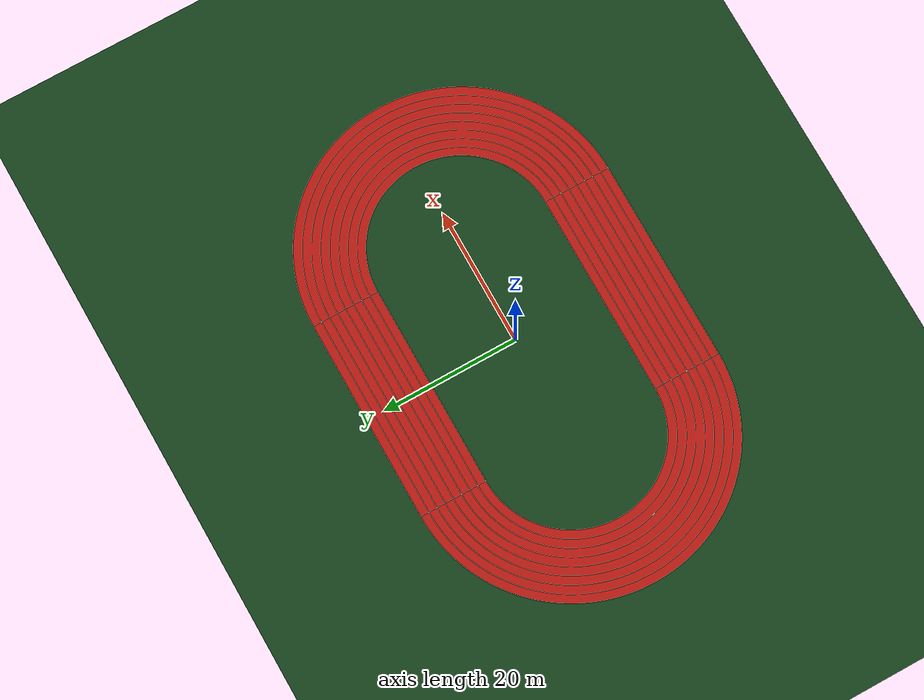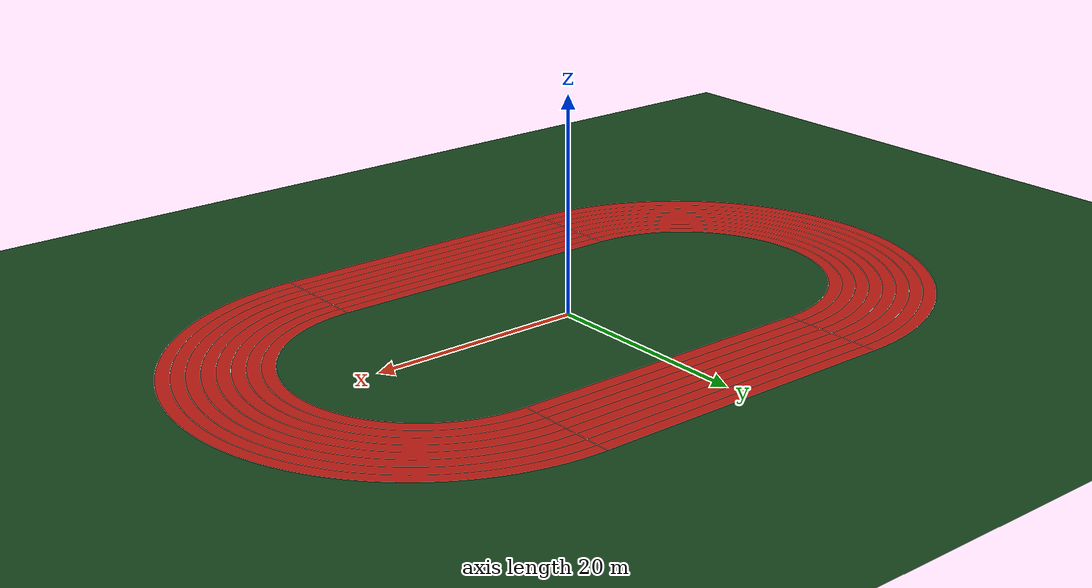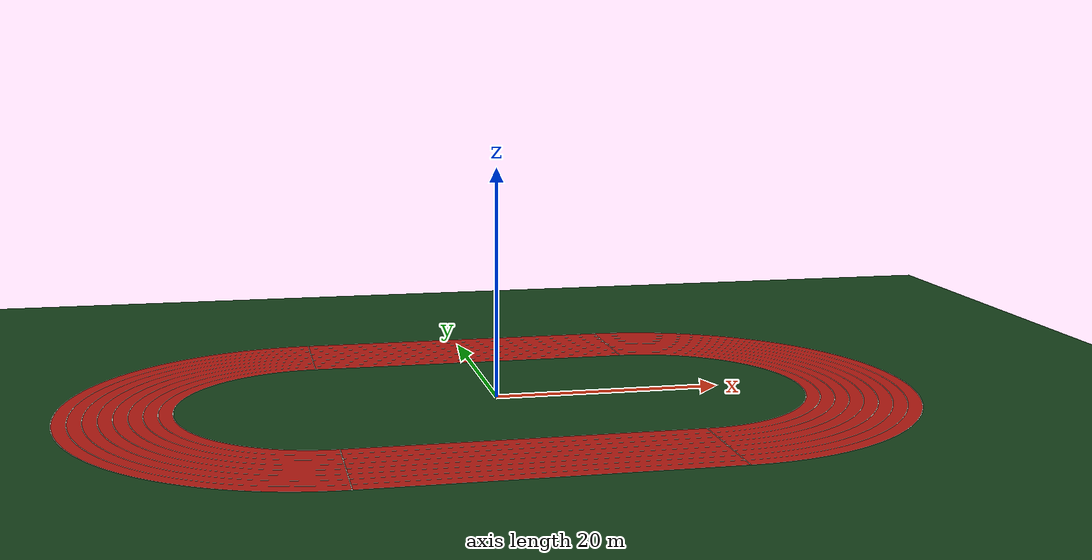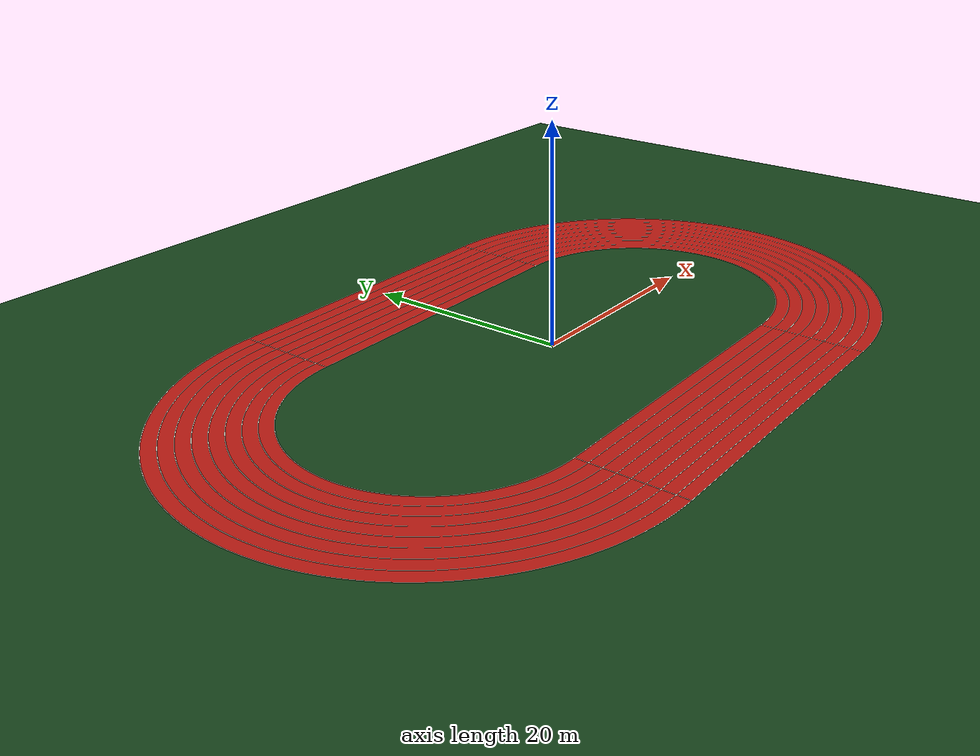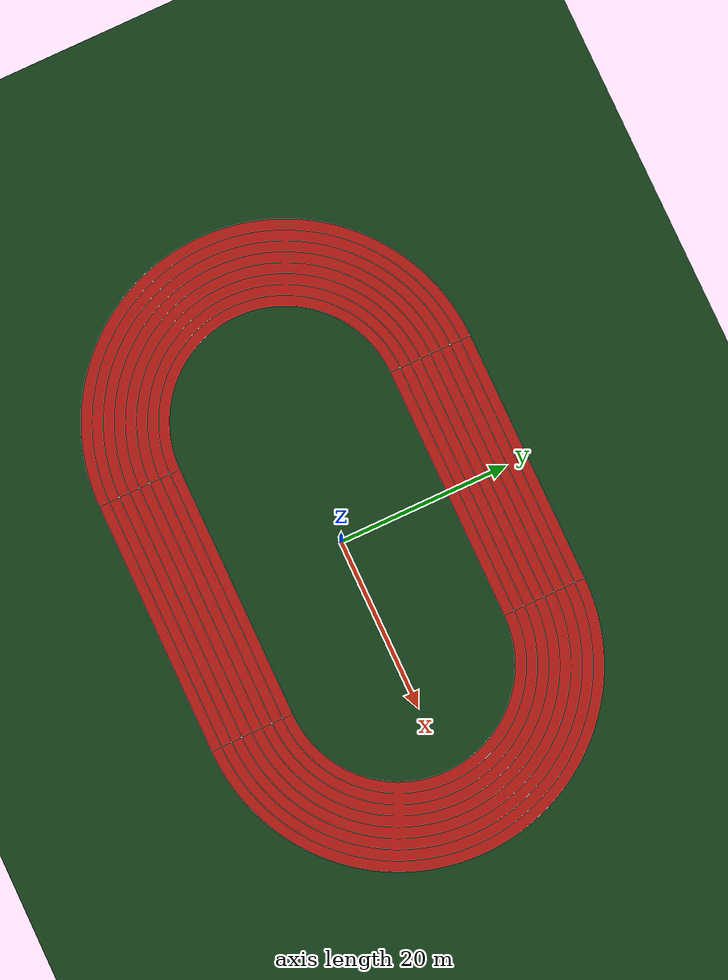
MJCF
<?xml version="1.0" encoding="utf-8"?>
<mujoco model="track_400m_compact">
  <compiler angle="radian" meshdir="./meshes/"/>
  <option timestep="0.002" gravity="0 0 -9.81"/>

  <asset>
    <texture type="skybox" builtin="gradient" rgb1="0.35 0.55 0.75" rgb2="0.02 0.04 0.06" width="512" height="3072"/>
    <texture type="2d" name="grass_checker_400m" builtin="checker" rgb1="0.10 0.30 0.12" rgb2="0.07 0.22 0.09" width="256" height="256"/>
    <material name="grass_400m" texture="grass_checker_400m" texuniform="true" texrepeat="45 45" reflectance="0.05"/>
    <material name="track_red_400m" rgba="0.72 0.10 0.07 1" reflectance="0.03"/>
    <material name="track_line_400m" rgba="0.96 0.96 0.88 1" reflectance="0.02"/>
    <mesh name="track_400m_surface" file="track_400m_surface.obj" inertia="shell"/>
    <mesh name="track_400m_lines" file="track_400m_lines.obj" inertia="shell"/>
  </asset>

  <worldbody>
    <light name="sun" pos="0 -25 55" dir="0 0 -1" directional="true" diffuse="0.8 0.8 0.8"/>
    <camera name="track_overview" pos="0 -70 48" xyaxes="1 0 0 0 0.58 0.82"/>
    <camera name="start_line" pos="-14.768 -8 13" xyaxes="1 0 0 0 0.78 0.63"/>
    <geom name="ground" type="plane" size="90 70 0.01" material="grass_400m" friction="0.8 0.02 0.01"/>

    <!-- Smooth compact 400m-style visual track. The ground plane provides all foot contact. -->
    <geom name="track_surface" type="mesh" mesh="track_400m_surface" material="track_red_400m" contype="0" conaffinity="0"/>
    <geom name="track_lines" type="mesh" mesh="track_400m_lines" material="track_line_400m" contype="0" conaffinity="0"/>
  </worldbody>
</mujoco>
